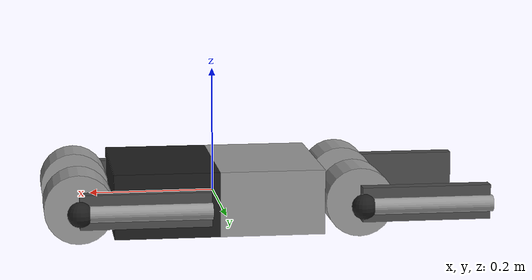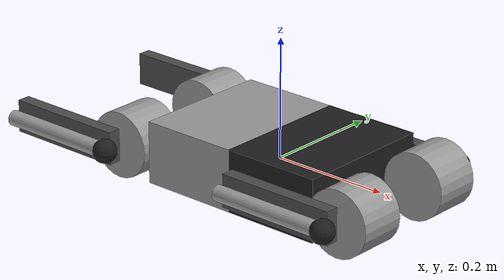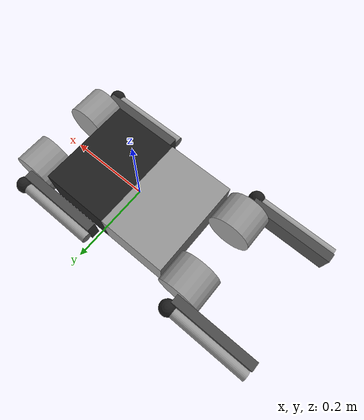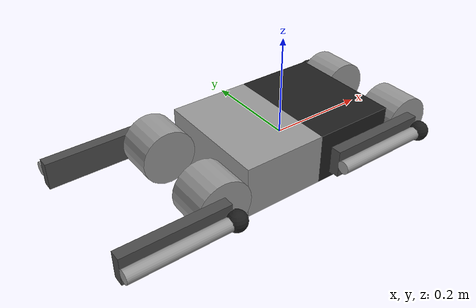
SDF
<sdf version='1.6'>
  <model name='spirit'>
    <link name='body'>
      <pose frame=''>0 0 0 0 -0 0</pose>
      <inertial>
        <pose frame=''>0.08375 0 0 0 -0 0</pose>
        <mass>5.75</mass>
        <inertia>
          <ixx>0.05</ixx>
          <ixy>0</ixy>
          <ixz>0</ixz>
          <iyy>0.1</iyy>
          <iyz>0</iyz>
          <izz>0.1</izz>
        </inertia>
      </inertial>
      <collision name='body_collision'>
        <pose frame=''>0.08375 0 0 0 -0 0</pose>
        <geometry>
          <box>
            <size>0.1675 0.24 0.104</size>
          </box>
        </geometry>
        <surface>
          <contact>
            <ode/>
          </contact>
          <friction>
            <ode/>
          </friction>
        </surface>
      </collision>
      <visual name='body_visual'>
        <pose frame=''>0.08375 0 0 0 -0 0</pose>
        <geometry>
          <box>
            <size>0.1675 0.24 0.104</size>
          </box>
        </geometry>
        <material>
          <script>
            <name>Gazebo/Black</name>
            <uri>file://media/materials/scripts/gazebo.material</uri>
          </script>
        </material>
      </visual>
      <gravity>1</gravity>
      <velocity_decay/>
      <gravity>1</gravity>
    </link>
    <link name='hip2'>
      <pose frame=''>0.2225 -0.062 0 0 -0 0</pose>
      <inertial>
        <pose frame=''>0 -0.028 0 0 -0 0</pose>
        <mass>0.575</mass>
        <inertia>
          <ixx>0.000669635</ixx>
          <ixy>0</ixy>
          <ixz>0</ixz>
          <iyy>0.000669635</iyy>
          <iyz>0</iyz>
          <izz>0.000869688</izz>
        </inertia>
      </inertial>
      <collision name='hip2_collision'>
        <pose frame=''>0 -0.028 0 1.5708 -0 0</pose>
        <geometry>
          <box>
            <size>0.11 0.11 0.08</size>
          </box>
        </geometry>
        <surface>
          <contact>
            <ode/>
          </contact>
          <friction>
            <ode/>
          </friction>
        </surface>
      </collision>
      <visual name='hip2_visual'>
        <pose frame=''>0 -0.028 0 1.5708 -0 0</pose>
        <geometry>
          <cylinder>
            <length>0.08</length>
            <radius>0.055</radius>
          </cylinder>
        </geometry>
        <material>
          <script>
            <name>Gazebo/Grey</name>
            <uri>file://media/materials/scripts/gazebo.material</uri>
          </script>
        </material>
      </visual>
      <gravity>1</gravity>
      <velocity_decay/>
    </link>
    <joint name='10' type='revolute'>
      <child>hip2</child>
      <parent>body</parent>
      <axis>
        <xyz>1 0 0</xyz>
        <limit>
          <lower>-0.707</lower>
          <upper>0.707</upper>
          <effort>40</effort>
          <velocity>30</velocity>
        </limit>
        <dynamics>
          <damping>0</damping>
          <friction>0</friction>
          <spring_reference>0</spring_reference>
          <spring_stiffness>0</spring_stiffness>
        </dynamics>
        <use_parent_model_frame>0</use_parent_model_frame>
      </axis>
    </joint>
    <link name='upper2'>
      <pose frame=''>0.2225 -0.16298 0 0 -0 0</pose>
      <inertial>
        <pose frame=''>-0.103 0.022 0 0 -0 0</pose>
        <mass>0.775</mass>
        <inertia>
          <ixx>5e-05</ixx>
          <ixy>0</ixy>
          <ixz>0</ixz>
          <iyy>0.001</iyy>
          <iyz>0</iyz>
          <izz>0.001</izz>
        </inertia>
      </inertial>
      <collision name='upper2_collision'>
        <pose frame=''>-0.103 0.022 0 0 -0 0</pose>
        <geometry>
          <box>
            <size>0.206 0.022 0.055</size>
          </box>
        </geometry>
        <surface>
          <contact>
            <ode/>
          </contact>
          <friction>
            <ode/>
          </friction>
        </surface>
      </collision>
      <visual name='upper2_visual'>
        <pose frame=''>-0.103 0.022 0 0 -0 0</pose>
        <geometry>
          <box>
            <size>0.206 0.022 0.055</size>
          </box>
        </geometry>
        <material>
          <script>
            <name>Gazebo/DarkGrey</name>
            <uri>file://media/materials/scripts/gazebo.material</uri>
          </script>
        </material>
      </visual>
      <gravity>1</gravity>
      <velocity_decay/>
    </link>
    <joint name='4' type='revolute'>
      <child>upper2</child>
      <parent>hip2</parent>
      <axis>
        <xyz>0 -1 0</xyz>
        <limit>
          <lower>-6.28319</lower>
          <upper>6.28319</upper>
          <effort>40</effort>
          <velocity>30</velocity>
        </limit>
        <dynamics>
          <damping>0</damping>
          <friction>0</friction>
          <spring_reference>0</spring_reference>
          <spring_stiffness>0</spring_stiffness>
        </dynamics>
        <use_parent_model_frame>0</use_parent_model_frame>
      </axis>
    </joint>
    <link name='lower2'>
      <pose frame=''>0.0165 -0.16298 0 0 -0 0</pose>
      <inertial>
        <pose frame=''>0.103 0 0 3.14159 1.57079 3.14159</pose>
        <mass>0.075</mass>
        <inertia>
          <ixx>5e-06</ixx>
          <ixy>0</ixy>
          <ixz>0</ixz>
          <iyy>0.0001</iyy>
          <iyz>0</iyz>
          <izz>0.0001</izz>
        </inertia>
      </inertial>
      <collision name='lower2_collision'>
        <pose frame=''>0.103 0 0 3.14159 1.57079 3.14159</pose>
        <geometry>
          <cylinder>
            <length>0.206</length>
            <radius>0.013</radius>
          </cylinder>
        </geometry>
        <surface>
          <contact>
            <ode/>
          </contact>
          <friction>
            <ode/>
          </friction>
        </surface>
      </collision>
      <visual name='lower2_visual'>
        <pose frame=''>0.103 0 0 3.14159 1.57079 3.14159</pose>
        <geometry>
          <cylinder>
            <length>0.206</length>
            <radius>0.013</radius>
          </cylinder>
        </geometry>
        <material>
          <script>
            <name>Gazebo/Grey</name>
            <uri>file://media/materials/scripts/gazebo.material</uri>
          </script>
        </material>
      </visual>
      <gravity>1</gravity>
      <velocity_decay/>
    </link>
    <joint name='5' type='revolute'>
      <child>lower2</child>
      <parent>upper2</parent>
      <axis>
        <xyz>0 1 0</xyz>
        <limit>
          <lower>0</lower>
          <upper>3.14159</upper>
          <effort>40</effort>
          <velocity>30</velocity>
        </limit>
        <dynamics>
          <damping>0</damping>
          <friction>0</friction>
          <spring_reference>0</spring_reference>
          <spring_stiffness>0</spring_stiffness>
        </dynamics>
        <use_parent_model_frame>0</use_parent_model_frame>
      </axis>
    </joint>
    <link name='toe2'>
      <pose frame=''>0.2225 -0.16298 0 0 -0 0</pose>
      <inertial>
        <pose frame=''>0 0 0 0 -0 0</pose>
        <mass>0.015</mass>
        <inertia>
          <ixx>2.5e-05</ixx>
          <ixy>0</ixy>
          <ixz>0</ixz>
          <iyy>2.5e-05</iyy>
          <iyz>0</iyz>
          <izz>2.5e-05</izz>
        </inertia>
      </inertial>
      <collision name='toe2_collision'>
        <pose frame=''>0 0 0 0 -0 0</pose>
        <geometry>
          <sphere>
            <radius>0.02</radius>
          </sphere>
        </geometry>
        <surface>
          <bounce>
            <restitution_coefficient>0</restitution_coefficient>
            <threshold>1e+06</threshold>
          </bounce>
          <friction>
            <torsional>
              <coefficient>0.3</coefficient>
            </torsional>
            <ode>
              <mu>100</mu>
              <mu2>50</mu2>
            </ode>
            <bullet>
              <rolling_friction>0.3</rolling_friction>
              <friction2>50</friction2>
            </bullet>
          </friction>
          <contact>
            <bullet>
              <kp>30000</kp>
              <kd>1000</kd>
              <split_impulse>1</split_impulse>
              <split_impulse_penetration_threshold>-0.01</split_impulse_penetration_threshold>
            </bullet>
            <ode>
              <kp>30000</kp>
              <kd>1000</kd>
            </ode>
          </contact>
        </surface>
      </collision>
      <visual name='toe2_visual'>
        <pose frame=''>0 0 0 0 -0 0</pose>
        <geometry>
          <sphere>
            <radius>0.02</radius>
          </sphere>
        </geometry>
        <material>
          <script>
            <name>Gazebo/Black</name>
            <uri>file://media/materials/scripts/gazebo.material</uri>
          </script>
        </material>
      </visual>
      <gravity>1</gravity>
      <velocity_decay/>
      <sensor name='toe2_contact' type='contact'>
        <plugin name='toe2_plugin' filename='libgazebo_ros_bumper.so'>
          <alwaysOn>1</alwaysOn>
          <updateRate>1000</updateRate>
          <bumperTopicName>gazebo/toe2_contact_state</bumperTopicName>
          <frameName>world</frameName>
          <robotNamespace>/</robotNamespace>
        </plugin>
        <contact>
          <collision>toe2_collision</collision>
          <topic>__default_topic__</topic>
        </contact>
        <update_rate>1000</update_rate>
      </sensor>
    </link>
    <joint name='jtoe2' type='fixed'>
      <child>toe2</child>
      <parent>lower2</parent>
      <axis>
        <dynamics>
          <spring_reference>0</spring_reference>
          <spring_stiffness>0</spring_stiffness>
        </dynamics>
        <xyz>0 0 1</xyz>
        <use_parent_model_frame>0</use_parent_model_frame>
        <limit>
          <lower>-1e+16</lower>
          <upper>1e+16</upper>
        </limit>
      </axis>
      <physics>
        <ode>
          <limit>
            <cfm>0</cfm>
            <erp>0.2</erp>
          </limit>
        </ode>
      </physics>
    </joint>
    <link name='hip0'>
      <pose frame=''>0.2225 0.062 0 0 -0 0</pose>
      <inertial>
        <pose frame=''>0 0.028 0 0 -0 0</pose>
        <mass>0.575</mass>
        <inertia>
          <ixx>0.000669635</ixx>
          <ixy>0</ixy>
          <ixz>0</ixz>
          <iyy>0.000669635</iyy>
          <iyz>0</iyz>
          <izz>0.000869688</izz>
        </inertia>
      </inertial>
      <collision name='hip0_collision'>
        <pose frame=''>0 0.028 0 1.5708 -0 0</pose>
        <geometry>
          <box>
            <size>0.11 0.11 0.08</size>
          </box>
        </geometry>
        <surface>
          <contact>
            <ode/>
          </contact>
          <friction>
            <ode/>
          </friction>
        </surface>
      </collision>
      <visual name='hip0_visual'>
        <pose frame=''>0 0.028 0 1.5708 -0 0</pose>
        <geometry>
          <cylinder>
            <length>0.08</length>
            <radius>0.055</radius>
          </cylinder>
        </geometry>
        <material>
          <script>
            <name>Gazebo/Grey</name>
            <uri>file://media/materials/scripts/gazebo.material</uri>
          </script>
        </material>
      </visual>
      <gravity>1</gravity>
      <velocity_decay/>
    </link>
    <joint name='8' type='revolute'>
      <child>hip0</child>
      <parent>body</parent>
      <axis>
        <xyz>1 0 0</xyz>
        <limit>
          <lower>-0.707</lower>
          <upper>0.707</upper>
          <effort>40</effort>
          <velocity>30</velocity>
        </limit>
        <dynamics>
          <damping>0</damping>
          <friction>0</friction>
          <spring_reference>0</spring_reference>
          <spring_stiffness>0</spring_stiffness>
        </dynamics>
        <use_parent_model_frame>0</use_parent_model_frame>
      </axis>
    </joint>
    <link name='upper0'>
      <pose frame=''>0.2225 0.16298 0 0 -0 0</pose>
      <inertial>
        <pose frame=''>-0.103 -0.022 0 0 -0 0</pose>
        <mass>0.775</mass>
        <inertia>
          <ixx>5e-05</ixx>
          <ixy>0</ixy>
          <ixz>0</ixz>
          <iyy>0.001</iyy>
          <iyz>0</iyz>
          <izz>0.001</izz>
        </inertia>
      </inertial>
      <collision name='upper0_collision'>
        <pose frame=''>-0.103 -0.022 0 0 -0 0</pose>
        <geometry>
          <box>
            <size>0.206 0.022 0.055</size>
          </box>
        </geometry>
        <surface>
          <contact>
            <ode/>
          </contact>
          <friction>
            <ode/>
          </friction>
        </surface>
      </collision>
      <visual name='upper0_visual'>
        <pose frame=''>-0.103 -0.022 0 0 -0 0</pose>
        <geometry>
          <box>
            <size>0.206 0.022 0.055</size>
          </box>
        </geometry>
        <material>
          <script>
            <name>Gazebo/DarkGrey</name>
            <uri>file://media/materials/scripts/gazebo.material</uri>
          </script>
        </material>
      </visual>
      <gravity>1</gravity>
      <velocity_decay/>
    </link>
    <joint name='0' type='revolute'>
      <child>upper0</child>
      <parent>hip0</parent>
      <axis>
        <xyz>0 -1 0</xyz>
        <limit>
          <lower>-6.28319</lower>
          <upper>6.28319</upper>
          <effort>40</effort>
          <velocity>30</velocity>
        </limit>
        <dynamics>
          <damping>0</damping>
          <friction>0</friction>
          <spring_reference>0</spring_reference>
          <spring_stiffness>0</spring_stiffness>
        </dynamics>
        <use_parent_model_frame>0</use_parent_model_frame>
      </axis>
    </joint>
    <link name='lower0'>
      <pose frame=''>0.0165 0.16298 0 0 -0 0</pose>
      <inertial>
        <pose frame=''>0.103 0 0 3.14159 1.57079 3.14159</pose>
        <mass>0.075</mass>
        <inertia>
          <ixx>5e-06</ixx>
          <ixy>0</ixy>
          <ixz>0</ixz>
          <iyy>0.0001</iyy>
          <iyz>0</iyz>
          <izz>0.0001</izz>
        </inertia>
      </inertial>
      <collision name='lower0_collision'>
        <pose frame=''>0.103 0 0 3.14159 1.57079 3.14159</pose>
        <geometry>
          <cylinder>
            <length>0.206</length>
            <radius>0.013</radius>
          </cylinder>
        </geometry>
        <surface>
          <contact>
            <ode/>
          </contact>
          <friction>
            <ode/>
          </friction>
        </surface>
      </collision>
      <visual name='lower0_visual'>
        <pose frame=''>0.103 0 0 3.14159 1.57079 3.14159</pose>
        <geometry>
          <cylinder>
            <length>0.206</length>
            <radius>0.013</radius>
          </cylinder>
        </geometry>
        <material>
          <script>
            <name>Gazebo/Grey</name>
            <uri>file://media/materials/scripts/gazebo.material</uri>
          </script>
        </material>
      </visual>
      <gravity>1</gravity>
      <velocity_decay/>
    </link>
    <joint name='1' type='revolute'>
      <child>lower0</child>
      <parent>upper0</parent>
      <axis>
        <xyz>0 1 0</xyz>
        <limit>
          <lower>0</lower>
          <upper>3.14159</upper>
          <effort>40</effort>
          <velocity>30</velocity>
        </limit>
        <dynamics>
          <damping>0</damping>
          <friction>0</friction>
          <spring_reference>0</spring_reference>
          <spring_stiffness>0</spring_stiffness>
        </dynamics>
        <use_parent_model_frame>0</use_parent_model_frame>
      </axis>
    </joint>
    <link name='toe0'>
      <pose frame=''>0.2225 0.16298 0 0 -0 0</pose>
      <inertial>
        <pose frame=''>0 0 0 0 -0 0</pose>
        <mass>0.015</mass>
        <inertia>
          <ixx>2.5e-05</ixx>
          <ixy>0</ixy>
          <ixz>0</ixz>
          <iyy>2.5e-05</iyy>
          <iyz>0</iyz>
          <izz>2.5e-05</izz>
        </inertia>
      </inertial>
      <collision name='toe0_collision'>
        <pose frame=''>0 0 0 0 -0 0</pose>
        <geometry>
          <sphere>
            <radius>0.02</radius>
          </sphere>
        </geometry>
        <surface>
          <bounce>
            <restitution_coefficient>0</restitution_coefficient>
            <threshold>1e+06</threshold>
          </bounce>
          <friction>
            <torsional>
              <coefficient>0.3</coefficient>
            </torsional>
            <ode>
              <mu>100</mu>
              <mu2>50</mu2>
            </ode>
            <bullet>
              <rolling_friction>0.3</rolling_friction>
              <friction2>50</friction2>
            </bullet>
          </friction>
          <contact>
            <bullet>
              <kp>30000</kp>
              <kd>1000</kd>
              <split_impulse>1</split_impulse>
              <split_impulse_penetration_threshold>-0.01</split_impulse_penetration_threshold>
            </bullet>
            <ode>
              <kp>30000</kp>
              <kd>1000</kd>
            </ode>
          </contact>
        </surface>
      </collision>
      <visual name='toe0_visual'>
        <pose frame=''>0 0 0 0 -0 0</pose>
        <geometry>
          <sphere>
            <radius>0.02</radius>
          </sphere>
        </geometry>
        <material>
          <script>
            <name>Gazebo/Black</name>
            <uri>file://media/materials/scripts/gazebo.material</uri>
          </script>
        </material>
      </visual>
      <gravity>1</gravity>
      <velocity_decay/>
      <sensor name='toe0_contact' type='contact'>
        <plugin name='toe0_plugin' filename='libgazebo_ros_bumper.so'>
          <alwaysOn>1</alwaysOn>
          <updateRate>1000</updateRate>
          <bumperTopicName>gazebo/toe0_contact_state</bumperTopicName>
          <frameName>world</frameName>
          <robotNamespace>/</robotNamespace>
        </plugin>
        <contact>
          <collision>toe0_collision</collision>
          <topic>__default_topic__</topic>
        </contact>
        <update_rate>1000</update_rate>
      </sensor>
    </link>
    <joint name='jtoe0' type='fixed'>
      <child>toe0</child>
      <parent>lower0</parent>
      <axis>
        <dynamics>
          <spring_reference>0</spring_reference>
          <spring_stiffness>0</spring_stiffness>
        </dynamics>
        <xyz>0 0 1</xyz>
        <use_parent_model_frame>0</use_parent_model_frame>
        <limit>
          <lower>-1e+16</lower>
          <upper>1e+16</upper>
        </limit>
      </axis>
      <physics>
        <ode>
          <limit>
            <cfm>0</cfm>
            <erp>0.2</erp>
          </limit>
        </ode>
      </physics>
    </joint>
    <link name='body2'>
      <pose frame=''>0 0 0 0 -0 0</pose>
      <inertial>
        <pose frame=''>-0.08375 0 0 0 -0 0</pose>
        <mass>5.75</mass>
        <inertia>
          <ixx>0.05</ixx>
          <ixy>0</ixy>
          <ixz>0</ixz>
          <iyy>0.1</iyy>
          <iyz>0</iyz>
          <izz>0.1</izz>
        </inertia>
      </inertial>
      <collision name='body2_collision'>
        <pose frame=''>-0.08375 0 0 0 -0 0</pose>
        <geometry>
          <box>
            <size>0.1675 0.24 0.104</size>
          </box>
        </geometry>
        <surface>
          <contact>
            <ode/>
          </contact>
          <friction>
            <ode/>
          </friction>
        </surface>
      </collision>
      <visual name='body2_visual'>
        <pose frame=''>-0.08375 0 0 0 -0 0</pose>
        <geometry>
          <box>
            <size>0.1675 0.24 0.104</size>
          </box>
        </geometry>
        <material>
          <script>
            <name>Gazebo/Grey</name>
            <uri>file://media/materials/scripts/gazebo.material</uri>
          </script>
        </material>
      </visual>
      <gravity>1</gravity>
      <velocity_decay/>
      <gravity>1</gravity>
    </link>
    <joint name='body_tail_joint_0' type='revolute'>
      <child>body2</child>
      <parent>body</parent>
      <axis>
        <xyz>0 1 0</xyz>
        <limit>
          <lower>-0.1</lower>
          <upper>0.1</upper>
          <effort>35</effort>
          <velocity>1e+06</velocity>
        </limit>
        <dynamics>
          <damping>0</damping>
          <friction>0</friction>
          <spring_reference>0</spring_reference>
          <spring_stiffness>0</spring_stiffness>
        </dynamics>
        <use_parent_model_frame>0</use_parent_model_frame>
      </axis>
    </joint>
    <link name='hip3'>
      <pose frame=''>-0.2225 -0.062 0 0 -0 0</pose>
      <inertial>
        <pose frame=''>0 -0.028 0 0 -0 0</pose>
        <mass>0.575</mass>
        <inertia>
          <ixx>0.000669635</ixx>
          <ixy>0</ixy>
          <ixz>0</ixz>
          <iyy>0.000669635</iyy>
          <iyz>0</iyz>
          <izz>0.000869688</izz>
        </inertia>
      </inertial>
      <collision name='hip3_collision'>
        <pose frame=''>0 -0.028 0 1.5708 -0 0</pose>
        <geometry>
          <box>
            <size>0.11 0.11 0.08</size>
          </box>
        </geometry>
        <surface>
          <contact>
            <ode/>
          </contact>
          <friction>
            <ode/>
          </friction>
        </surface>
      </collision>
      <visual name='hip3_visual'>
        <pose frame=''>0 -0.028 0 1.5708 -0 0</pose>
        <geometry>
          <cylinder>
            <length>0.08</length>
            <radius>0.055</radius>
          </cylinder>
        </geometry>
        <material>
          <script>
            <name>Gazebo/Grey</name>
            <uri>file://media/materials/scripts/gazebo.material</uri>
          </script>
        </material>
      </visual>
      <gravity>1</gravity>
      <velocity_decay/>
    </link>
    <joint name='11' type='revolute'>
      <child>hip3</child>
      <parent>body2</parent>
      <axis>
        <xyz>1 0 0</xyz>
        <limit>
          <lower>-0.707</lower>
          <upper>0.707</upper>
          <effort>40</effort>
          <velocity>30</velocity>
        </limit>
        <dynamics>
          <damping>0</damping>
          <friction>0</friction>
          <spring_reference>0</spring_reference>
          <spring_stiffness>0</spring_stiffness>
        </dynamics>
        <use_parent_model_frame>0</use_parent_model_frame>
      </axis>
    </joint>
    <link name='upper3'>
      <pose frame=''>-0.2225 -0.16298 0 0 -0 0</pose>
      <inertial>
        <pose frame=''>-0.103 0.022 0 0 -0 0</pose>
        <mass>0.775</mass>
        <inertia>
          <ixx>5e-05</ixx>
          <ixy>0</ixy>
          <ixz>0</ixz>
          <iyy>0.001</iyy>
          <iyz>0</iyz>
          <izz>0.001</izz>
        </inertia>
      </inertial>
      <collision name='upper3_collision'>
        <pose frame=''>-0.103 0.022 0 0 -0 0</pose>
        <geometry>
          <box>
            <size>0.206 0.022 0.055</size>
          </box>
        </geometry>
        <surface>
          <contact>
            <ode/>
          </contact>
          <friction>
            <ode/>
          </friction>
        </surface>
      </collision>
      <visual name='upper3_visual'>
        <pose frame=''>-0.103 0.022 0 0 -0 0</pose>
        <geometry>
          <box>
            <size>0.206 0.022 0.055</size>
          </box>
        </geometry>
        <material>
          <script>
            <name>Gazebo/DarkGrey</name>
            <uri>file://media/materials/scripts/gazebo.material</uri>
          </script>
        </material>
      </visual>
      <gravity>1</gravity>
      <velocity_decay/>
    </link>
    <joint name='6' type='revolute'>
      <child>upper3</child>
      <parent>hip3</parent>
      <axis>
        <xyz>0 -1 0</xyz>
        <limit>
          <lower>-6.28319</lower>
          <upper>6.28319</upper>
          <effort>40</effort>
          <velocity>30</velocity>
        </limit>
        <dynamics>
          <damping>0</damping>
          <friction>0</friction>
          <spring_reference>0</spring_reference>
          <spring_stiffness>0</spring_stiffness>
        </dynamics>
        <use_parent_model_frame>0</use_parent_model_frame>
      </axis>
    </joint>
    <link name='lower3'>
      <pose frame=''>-0.4285 -0.16298 0 0 -0 0</pose>
      <inertial>
        <pose frame=''>0.103 0 0 3.14159 1.57079 3.14159</pose>
        <mass>0.075</mass>
        <inertia>
          <ixx>5e-06</ixx>
          <ixy>0</ixy>
          <ixz>0</ixz>
          <iyy>0.0001</iyy>
          <iyz>0</iyz>
          <izz>0.0001</izz>
        </inertia>
      </inertial>
      <collision name='lower3_collision'>
        <pose frame=''>0.103 0 0 3.14159 1.57079 3.14159</pose>
        <geometry>
          <cylinder>
            <length>0.206</length>
            <radius>0.013</radius>
          </cylinder>
        </geometry>
        <surface>
          <contact>
            <ode/>
          </contact>
          <friction>
            <ode/>
          </friction>
        </surface>
      </collision>
      <visual name='lower3_visual'>
        <pose frame=''>0.103 0 0 3.14159 1.57079 3.14159</pose>
        <geometry>
          <cylinder>
            <length>0.206</length>
            <radius>0.013</radius>
          </cylinder>
        </geometry>
        <material>
          <script>
            <name>Gazebo/Grey</name>
            <uri>file://media/materials/scripts/gazebo.material</uri>
          </script>
        </material>
      </visual>
      <gravity>1</gravity>
      <velocity_decay/>
    </link>
    <joint name='7' type='revolute'>
      <child>lower3</child>
      <parent>upper3</parent>
      <axis>
        <xyz>0 1 0</xyz>
        <limit>
          <lower>0</lower>
          <upper>3.14159</upper>
          <effort>40</effort>
          <velocity>30</velocity>
        </limit>
        <dynamics>
          <damping>0</damping>
          <friction>0</friction>
          <spring_reference>0</spring_reference>
          <spring_stiffness>0</spring_stiffness>
        </dynamics>
        <use_parent_model_frame>0</use_parent_model_frame>
      </axis>
    </joint>
    <link name='toe3'>
      <pose frame=''>-0.2225 -0.16298 0 0 -0 0</pose>
      <inertial>
        <pose frame=''>0 0 0 0 -0 0</pose>
        <mass>0.015</mass>
        <inertia>
          <ixx>2.5e-05</ixx>
          <ixy>0</ixy>
          <ixz>0</ixz>
          <iyy>2.5e-05</iyy>
          <iyz>0</iyz>
          <izz>2.5e-05</izz>
        </inertia>
      </inertial>
      <collision name='toe3_collision'>
        <pose frame=''>0 0 0 0 -0 0</pose>
        <geometry>
          <sphere>
            <radius>0.02</radius>
          </sphere>
        </geometry>
        <surface>
          <bounce>
            <restitution_coefficient>0</restitution_coefficient>
            <threshold>1e+06</threshold>
          </bounce>
          <friction>
            <torsional>
              <coefficient>0.3</coefficient>
            </torsional>
            <ode>
              <mu>100</mu>
              <mu2>50</mu2>
            </ode>
            <bullet>
              <rolling_friction>0.3</rolling_friction>
              <friction2>50</friction2>
            </bullet>
          </friction>
          <contact>
            <bullet>
              <kp>30000</kp>
              <kd>1000</kd>
              <split_impulse>1</split_impulse>
              <split_impulse_penetration_threshold>-0.01</split_impulse_penetration_threshold>
            </bullet>
            <ode>
              <kp>30000</kp>
              <kd>1000</kd>
            </ode>
          </contact>
        </surface>
      </collision>
      <visual name='toe3_visual'>
        <pose frame=''>0 0 0 0 -0 0</pose>
        <geometry>
          <sphere>
            <radius>0.02</radius>
          </sphere>
        </geometry>
        <material>
          <script>
            <name>Gazebo/Black</name>
            <uri>file://media/materials/scripts/gazebo.material</uri>
          </script>
        </material>
      </visual>
      <gravity>1</gravity>
      <velocity_decay/>
      <sensor name='toe3_contact' type='contact'>
        <plugin name='toe3_plugin' filename='libgazebo_ros_bumper.so'>
          <alwaysOn>1</alwaysOn>
          <updateRate>1000</updateRate>
          <bumperTopicName>gazebo/toe3_contact_state</bumperTopicName>
          <frameName>world</frameName>
          <robotNamespace>/</robotNamespace>
        </plugin>
        <contact>
          <collision>toe3_collision</collision>
          <topic>__default_topic__</topic>
        </contact>
        <update_rate>1000</update_rate>
      </sensor>
    </link>
    <joint name='jtoe3' type='fixed'>
      <child>toe3</child>
      <parent>lower3</parent>
      <axis>
        <dynamics>
          <spring_reference>0</spring_reference>
          <spring_stiffness>0</spring_stiffness>
        </dynamics>
        <xyz>0 0 1</xyz>
        <use_parent_model_frame>0</use_parent_model_frame>
        <limit>
          <lower>-1e+16</lower>
          <upper>1e+16</upper>
        </limit>
      </axis>
      <physics>
        <ode>
          <limit>
            <cfm>0</cfm>
            <erp>0.2</erp>
          </limit>
        </ode>
      </physics>
    </joint>
    <link name='hip1'>
      <pose frame=''>-0.2225 0.062 0 0 -0 0</pose>
      <inertial>
        <pose frame=''>0 0.028 0 0 -0 0</pose>
        <mass>0.575</mass>
        <inertia>
          <ixx>0.000669635</ixx>
          <ixy>0</ixy>
          <ixz>0</ixz>
          <iyy>0.000669635</iyy>
          <iyz>0</iyz>
          <izz>0.000869688</izz>
        </inertia>
      </inertial>
      <collision name='hip1_collision'>
        <pose frame=''>0 0.028 0 1.5708 -0 0</pose>
        <geometry>
          <box>
            <size>0.11 0.11 0.08</size>
          </box>
        </geometry>
        <surface>
          <contact>
            <ode/>
          </contact>
          <friction>
            <ode/>
          </friction>
        </surface>
      </collision>
      <visual name='hip1_visual'>
        <pose frame=''>0 0.028 0 1.5708 -0 0</pose>
        <geometry>
          <cylinder>
            <length>0.08</length>
            <radius>0.055</radius>
          </cylinder>
        </geometry>
        <material>
          <script>
            <name>Gazebo/Grey</name>
            <uri>file://media/materials/scripts/gazebo.material</uri>
          </script>
        </material>
      </visual>
      <gravity>1</gravity>
      <velocity_decay/>
    </link>
    <joint name='9' type='revolute'>
      <child>hip1</child>
      <parent>body2</parent>
      <axis>
        <xyz>1 0 0</xyz>
        <limit>
          <lower>-0.707</lower>
          <upper>0.707</upper>
          <effort>40</effort>
          <velocity>30</velocity>
        </limit>
        <dynamics>
          <damping>0</damping>
          <friction>0</friction>
          <spring_reference>0</spring_reference>
          <spring_stiffness>0</spring_stiffness>
        </dynamics>
        <use_parent_model_frame>0</use_parent_model_frame>
      </axis>
    </joint>
    <link name='upper1'>
      <pose frame=''>-0.2225 0.16298 0 0 -0 0</pose>
      <inertial>
        <pose frame=''>-0.103 -0.022 0 0 -0 0</pose>
        <mass>0.775</mass>
        <inertia>
          <ixx>5e-05</ixx>
          <ixy>0</ixy>
          <ixz>0</ixz>
          <iyy>0.001</iyy>
          <iyz>0</iyz>
          <izz>0.001</izz>
        </inertia>
      </inertial>
      <collision name='upper1_collision'>
        <pose frame=''>-0.103 -0.022 0 0 -0 0</pose>
        <geometry>
          <box>
            <size>0.206 0.022 0.055</size>
          </box>
        </geometry>
        <surface>
          <contact>
            <ode/>
          </contact>
          <friction>
            <ode/>
          </friction>
        </surface>
      </collision>
      <visual name='upper1_visual'>
        <pose frame=''>-0.103 -0.022 0 0 -0 0</pose>
        <geometry>
          <box>
            <size>0.206 0.022 0.055</size>
          </box>
        </geometry>
        <material>
          <script>
            <name>Gazebo/DarkGrey</name>
            <uri>file://media/materials/scripts/gazebo.material</uri>
          </script>
        </material>
      </visual>
      <gravity>1</gravity>
      <velocity_decay/>
    </link>
    <joint name='2' type='revolute'>
      <child>upper1</child>
      <parent>hip1</parent>
      <axis>
        <xyz>0 -1 0</xyz>
        <limit>
          <lower>-6.28319</lower>
          <upper>6.28319</upper>
          <effort>40</effort>
          <velocity>30</velocity>
        </limit>
        <dynamics>
          <damping>0</damping>
          <friction>0</friction>
          <spring_reference>0</spring_reference>
          <spring_stiffness>0</spring_stiffness>
        </dynamics>
        <use_parent_model_frame>0</use_parent_model_frame>
      </axis>
    </joint>
    <link name='lower1'>
      <pose frame=''>-0.4285 0.16298 0 0 -0 0</pose>
      <inertial>
        <pose frame=''>0.103 0 0 3.14159 1.57079 3.14159</pose>
        <mass>0.075</mass>
        <inertia>
          <ixx>5e-06</ixx>
          <ixy>0</ixy>
          <ixz>0</ixz>
          <iyy>0.0001</iyy>
          <iyz>0</iyz>
          <izz>0.0001</izz>
        </inertia>
      </inertial>
      <collision name='lower1_collision'>
        <pose frame=''>0.103 0 0 3.14159 1.57079 3.14159</pose>
        <geometry>
          <cylinder>
            <length>0.206</length>
            <radius>0.013</radius>
          </cylinder>
        </geometry>
        <surface>
          <contact>
            <ode/>
          </contact>
          <friction>
            <ode/>
          </friction>
        </surface>
      </collision>
      <visual name='lower1_visual'>
        <pose frame=''>0.103 0 0 3.14159 1.57079 3.14159</pose>
        <geometry>
          <cylinder>
            <length>0.206</length>
            <radius>0.013</radius>
          </cylinder>
        </geometry>
        <material>
          <script>
            <name>Gazebo/Grey</name>
            <uri>file://media/materials/scripts/gazebo.material</uri>
          </script>
        </material>
      </visual>
      <gravity>1</gravity>
      <velocity_decay/>
    </link>
    <joint name='3' type='revolute'>
      <child>lower1</child>
      <parent>upper1</parent>
      <axis>
        <xyz>0 1 0</xyz>
        <limit>
          <lower>0</lower>
          <upper>3.14159</upper>
          <effort>40</effort>
          <velocity>30</velocity>
        </limit>
        <dynamics>
          <damping>0</damping>
          <friction>0</friction>
          <spring_reference>0</spring_reference>
          <spring_stiffness>0</spring_stiffness>
        </dynamics>
        <use_parent_model_frame>0</use_parent_model_frame>
      </axis>
    </joint>
    <link name='toe1'>
      <pose frame=''>-0.2225 0.16298 0 0 -0 0</pose>
      <inertial>
        <pose frame=''>0 0 0 0 -0 0</pose>
        <mass>0.015</mass>
        <inertia>
          <ixx>2.5e-05</ixx>
          <ixy>0</ixy>
          <ixz>0</ixz>
          <iyy>2.5e-05</iyy>
          <iyz>0</iyz>
          <izz>2.5e-05</izz>
        </inertia>
      </inertial>
      <collision name='toe1_collision'>
        <pose frame=''>0 0 0 0 -0 0</pose>
        <geometry>
          <sphere>
            <radius>0.02</radius>
          </sphere>
        </geometry>
        <surface>
          <bounce>
            <restitution_coefficient>0</restitution_coefficient>
            <threshold>1e+06</threshold>
          </bounce>
          <friction>
            <torsional>
              <coefficient>0.3</coefficient>
            </torsional>
            <ode>
              <mu>100</mu>
              <mu2>50</mu2>
            </ode>
            <bullet>
              <rolling_friction>0.3</rolling_friction>
              <friction2>50</friction2>
            </bullet>
          </friction>
          <contact>
            <bullet>
              <kp>30000</kp>
              <kd>1000</kd>
              <split_impulse>1</split_impulse>
              <split_impulse_penetration_threshold>-0.01</split_impulse_penetration_threshold>
            </bullet>
            <ode>
              <kp>30000</kp>
              <kd>1000</kd>
            </ode>
          </contact>
        </surface>
      </collision>
      <visual name='toe1_visual'>
        <pose frame=''>0 0 0 0 -0 0</pose>
        <geometry>
          <sphere>
            <radius>0.02</radius>
          </sphere>
        </geometry>
        <material>
          <script>
            <name>Gazebo/Black</name>
            <uri>file://media/materials/scripts/gazebo.material</uri>
          </script>
        </material>
      </visual>
      <gravity>1</gravity>
      <velocity_decay/>
      <sensor name='toe1_contact' type='contact'>
        <plugin name='toe1_plugin' filename='libgazebo_ros_bumper.so'>
          <alwaysOn>1</alwaysOn>
          <updateRate>1000</updateRate>
          <bumperTopicName>gazebo/toe1_contact_state</bumperTopicName>
          <frameName>world</frameName>
          <robotNamespace>/</robotNamespace>
        </plugin>
        <contact>
          <collision>toe1_collision</collision>
          <topic>__default_topic__</topic>
        </contact>
        <update_rate>1000</update_rate>
      </sensor>
    </link>
    <joint name='jtoe1' type='fixed'>
      <child>toe1</child>
      <parent>lower1</parent>
      <axis>
        <dynamics>
          <spring_reference>0</spring_reference>
          <spring_stiffness>0</spring_stiffness>
        </dynamics>
        <xyz>0 0 1</xyz>
        <use_parent_model_frame>0</use_parent_model_frame>
        <limit>
          <lower>-1e+16</lower>
          <upper>1e+16</upper>
        </limit>
      </axis>
      <physics>
        <ode>
          <limit>
            <cfm>0</cfm>
            <erp>0.2</erp>
          </limit>
        </ode>
      </physics>
    </joint>
    <link name='tail_link_1'>
      <pose frame=''>0 0 0 0 -0 0</pose>
      <inertial>
        <pose frame=''>0 0 0 0 -0 0</pose>
        <mass>0.001</mass>
        <inertia>
          <ixx>0.0001</ixx>
          <ixy>0</ixy>
          <ixz>0</ixz>
          <iyy>0.0001</iyy>
          <iyz>0</iyz>
          <izz>0.0001</izz>
        </inertia>
      </inertial>
      <visual name='tail_link_1_visual'>
        <pose frame=''>0 0 0 0 -0 0</pose>
        <geometry>
          <sphere>
            <radius>0.01</radius>
          </sphere>
        </geometry>
        <material>
          <script>
            <name>Gazebo/Gray</name>
            <uri>file://media/materials/scripts/gazebo.material</uri>
          </script>
        </material>
      </visual>
      <gravity>1</gravity>
      <velocity_decay/>
    </link>
    <joint name='body_tail_joint_1' type='revolute'>
      <child>tail_link_1</child>
      <parent>body2</parent>
      <axis>
        <xyz>0 1 0</xyz>
        <limit>
          <lower>-1.57</lower>
          <upper>-1.5</upper>
          <effort>35</effort>
          <velocity>1e+06</velocity>
        </limit>
        <dynamics>
          <damping>0</damping>
          <friction>0</friction>
          <spring_reference>0</spring_reference>
          <spring_stiffness>0</spring_stiffness>
        </dynamics>
        <use_parent_model_frame>0</use_parent_model_frame>
      </axis>
    </joint>
    <link name='tail_mass'>
      <pose frame=''>0 0 0 0 -0 0</pose>
      <inertial>
        <pose frame=''>0 0 0 0 -0 0</pose>
        <mass>0.001</mass>
        <inertia>
          <ixx>0.001</ixx>
          <ixy>0</ixy>
          <ixz>0</ixz>
          <iyy>0</iyy>
          <iyz>0</iyz>
          <izz>0</izz>
        </inertia>
      </inertial>
      <collision name='tail_mass_collision'>
        <pose frame=''>0 0 0 0 -0 0</pose>
        <geometry>
          <sphere>
            <radius>0.02</radius>
          </sphere>
        </geometry>
        <surface>
          <contact>
            <ode/>
          </contact>
          <friction>
            <ode/>
          </friction>
        </surface>
      </collision>
      <visual name='tail_mass_visual'>
        <pose frame=''>0 0 0 0 -0 0</pose>
        <geometry>
          <sphere>
            <radius>0.01</radius>
          </sphere>
        </geometry>
        <material>
          <script>
            <name>Gazebo/Gray</name>
            <uri>file://media/materials/scripts/gazebo.material</uri>
          </script>
        </material>
      </visual>
      <gravity>1</gravity>
      <velocity_decay/>
    </link>
    <joint name='tail_link_mass_joint' type='fixed'>
      <child>tail_mass</child>
      <parent>tail_link_1</parent>
      <axis>
        <dynamics>
          <spring_reference>0</spring_reference>
          <spring_stiffness>0</spring_stiffness>
        </dynamics>
        <xyz>0 0 1</xyz>
        <use_parent_model_frame>0</use_parent_model_frame>
        <limit>
          <lower>-1e+16</lower>
          <upper>1e+16</upper>
        </limit>
      </axis>
      <physics>
        <ode>
          <limit>
            <cfm>0</cfm>
            <erp>0.2</erp>
          </limit>
        </ode>
      </physics>
    </joint>
    <link name='imu::link'>
      <pose frame=''>0 0 0 0 -0 0</pose>
      <inertial>
        <pose frame=''>0 0 0 0 -0 0</pose>
        <mass>0.001</mass>
        <inertia>
          <ixx>0.0001</ixx>
          <ixy>0</ixy>
          <ixz>0</ixz>
          <iyy>0</iyy>
          <iyz>0</iyz>
          <izz>0</izz>
        </inertia>
      </inertial>
      <visual name='imu::link_visual'>
        <pose frame=''>0 0 0 0 -0 0</pose>
        <geometry>
          <sphere>
            <radius>0.02</radius>
          </sphere>
        </geometry>
        <material>
          <script>
            <name>Gazebo/Gray</name>
            <uri>file://media/materials/scripts/gazebo.material</uri>
          </script>
        </material>
      </visual>
      <gravity>1</gravity>
      <velocity_decay/>
      <sensor name='imu_sensor' type='imu'>
        <always_on>1</always_on>
        <update_rate>100</update_rate>
        <visualize>1</visualize>
        <topic>__default_topic__</topic>
        <plugin name='imu_plugin' filename='libgazebo_ros_imu_sensor.so'>
          <topicName>/mcu/state/imu</topicName>
          <bodyName>imu::link</bodyName>
          <robotNamespace>/</robotNamespace>
          <updateRateHZ>500.0</updateRateHZ>
          <gaussianNoise>0.0</gaussianNoise>
          <xyzOffset>0 0 0</xyzOffset>
          <rpyOffset>0 0 0</rpyOffset>
          <frameName>imu::link</frameName>
          <initialOrientationAsReference>0</initialOrientationAsReference>
        </plugin>
        <pose frame=''>0 0 0 0 -0 0</pose>
        <imu>
          <angular_velocity/>
          <linear_acceleration/>
        </imu>
      </sensor>
    </link>
    <joint name='imu_joint' type='fixed'>
      <child>imu::link</child>
      <parent>body</parent>
      <axis>
        <dynamics>
          <spring_reference>0</spring_reference>
          <spring_stiffness>0</spring_stiffness>
        </dynamics>
        <xyz>0 0 1</xyz>
        <use_parent_model_frame>0</use_parent_model_frame>
        <limit>
          <lower>-1e+16</lower>
          <upper>1e+16</upper>
        </limit>
      </axis>
      <physics>
        <ode>
          <limit>
            <cfm>0</cfm>
            <erp>0.2</erp>
          </limit>
        </ode>
      </physics>
    </joint>
    <static>0</static>
    <plugin name='gazebo_ros_control' filename='libgazebo_ros_control.so'>
      <robotNamespace>/spirit</robotNamespace>
      <controlPeriod>0.002</controlPeriod>
    </plugin>
    <plugin name='ground_truth_estimator' filename='libground_truth_estimator.so'>
      <updateRateHZ>500.0</updateRateHZ>
      <robotNamespace>/</robotNamespace>
    </plugin>
  </model>
</sdf>
